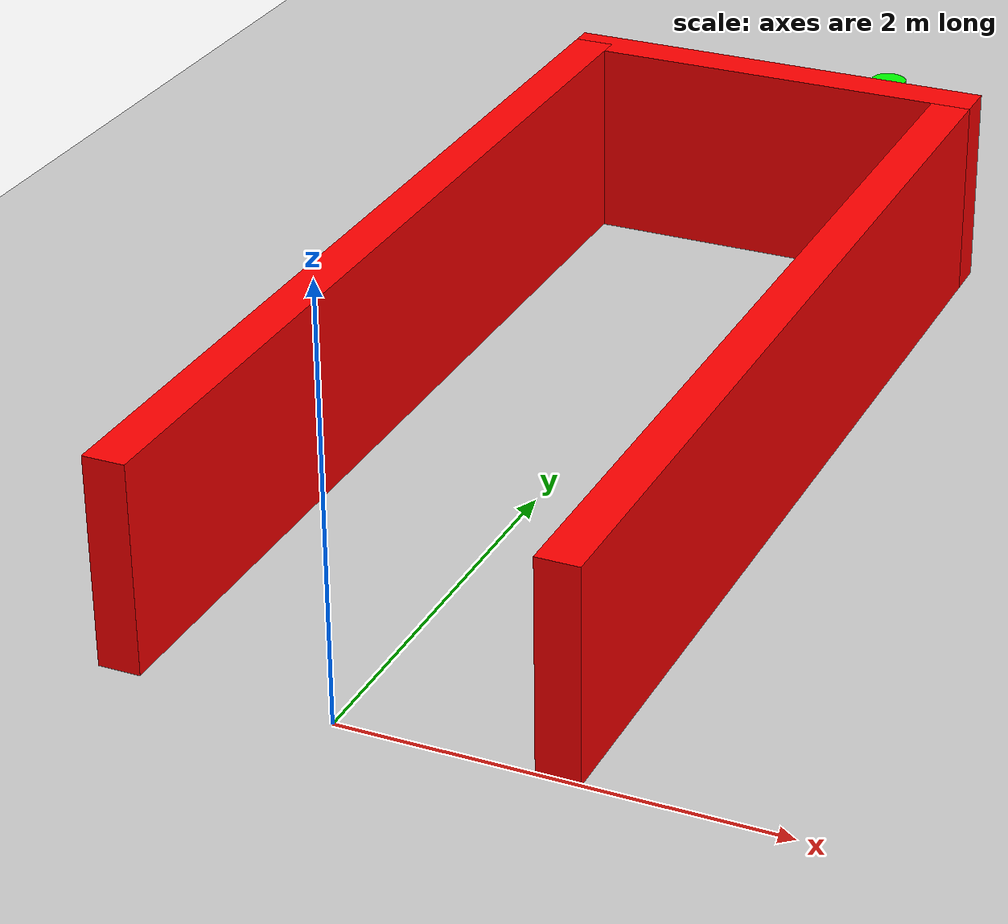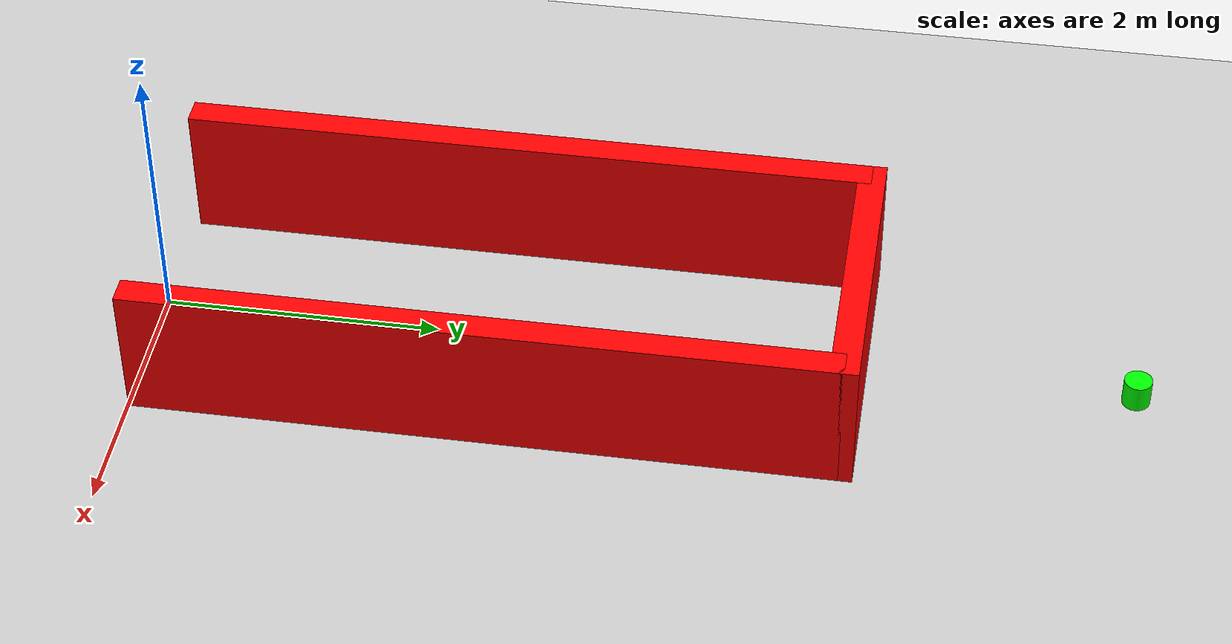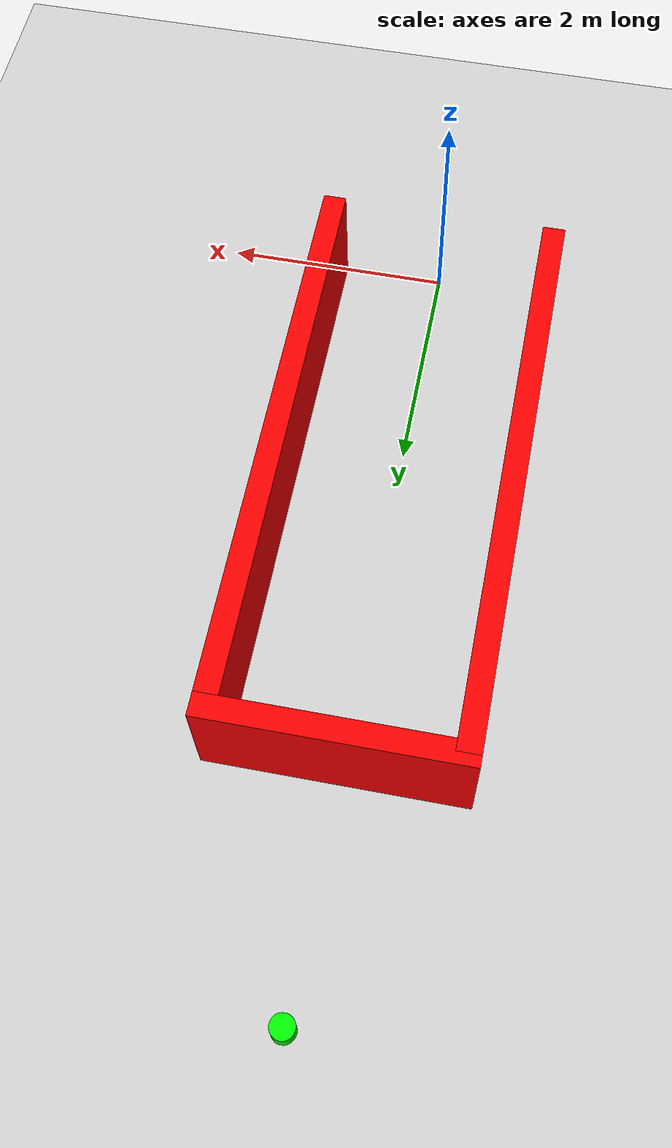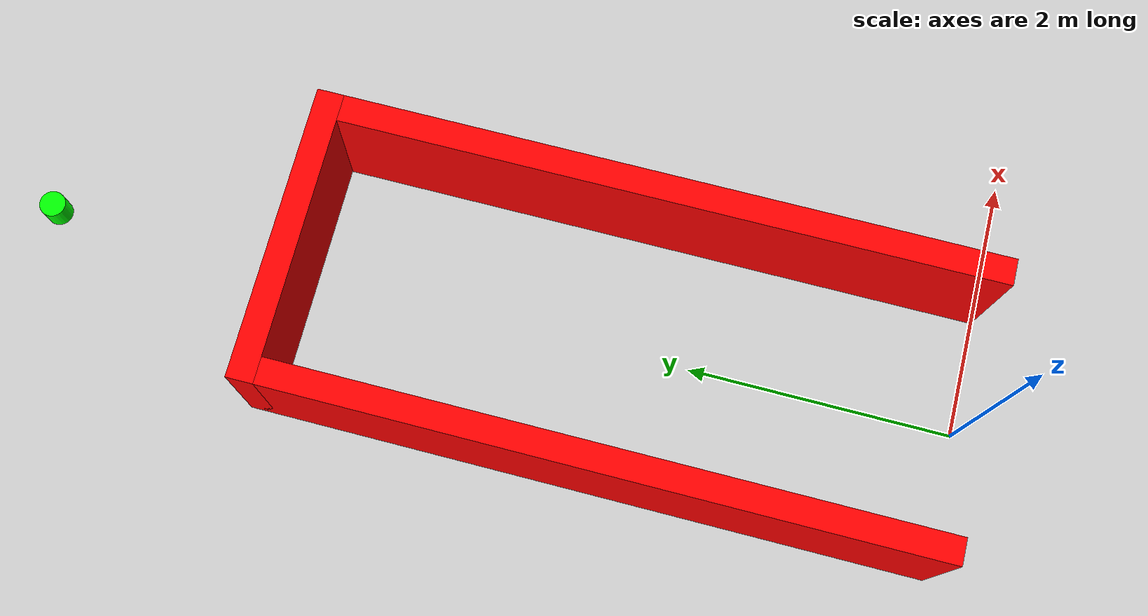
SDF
<?xml version="1.0" ?>
<sdf version="1.6">
  <world name="utrap_world">

    <!-- Light -->
    <include>
      <uri>model://sun</uri>
    </include>

    <!-- Ground -->
    <include>
      <uri>model://ground_plane</uri>
    </include>

    <!-- U-SHAPE: Left Wall -->
    <model name="left_wall">
      <static>true</static>
      <pose>-1.0 2.5 0.5 0 0 0</pose>
      <link name="link">
        <collision name="col"><geometry><box><size>0.2 5.0 1.0</size></box></geometry></collision>
        <visual name="vis"><geometry><box><size>0.2 5.0 1.0</size></box></geometry>
          <material><ambient>1 0 0 1</ambient></material>
        </visual>
      </link>
    </model>

    <!-- U-SHAPE: Right Wall -->
    <model name="right_wall">
      <static>true</static>
      <pose>1.0 2.5 0.5 0 0 0</pose>
      <link name="link">
        <collision name="col"><geometry><box><size>0.2 5.0 1.0</size></box></geometry></collision>
        <visual name="vis"><geometry><box><size>0.2 5.0 1.0</size></box></geometry>
          <material><ambient>1 0 0 1</ambient></material>
        </visual>
      </link>
    </model>

    <!-- U-SHAPE: Bottom Wall -->
    <model name="bottom_wall">
      <static>true</static>
      <pose>0.0 5.0 0.5 0 0 0</pose>
      <link name="link">
        <collision name="col"><geometry><box><size>2.2 0.2 1.0</size></box></geometry></collision>
        <visual name="vis"><geometry><box><size>2.2 0.2 1.0</size></box></geometry>
          <material><ambient>1 0 0 1</ambient></material>
        </visual>
      </link>
    </model>

<!-- Goal Marker — Green Cylinder -->
<model name="goal_marker">
  <static>true</static>
  <pose>0.0 7.0 0.1 0 0 0</pose>
  <link name="link">
    <collision name="col">
      <geometry>
	<cylinder>
	  <radius>0.1</radius>
	  <length>0.2</length>
	</cylinder>
      </geometry>
    </collision>
    <visual name="vis">
      <geometry>
	<cylinder>
	  <radius>0.1</radius>
	  <length>0.2</length>
	</cylinder>
      </geometry>
      <material>
	<ambient>0 1 0 1</ambient>
      </material>
    </visual>
  </link>
</model>

  </world>
</sdf>
